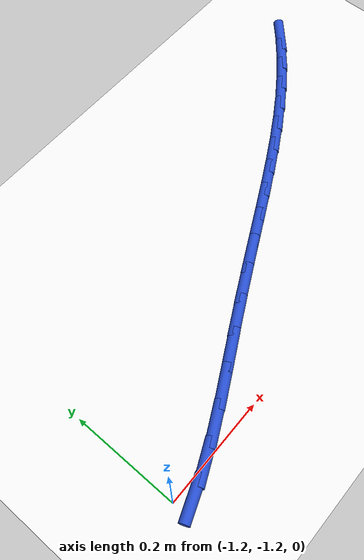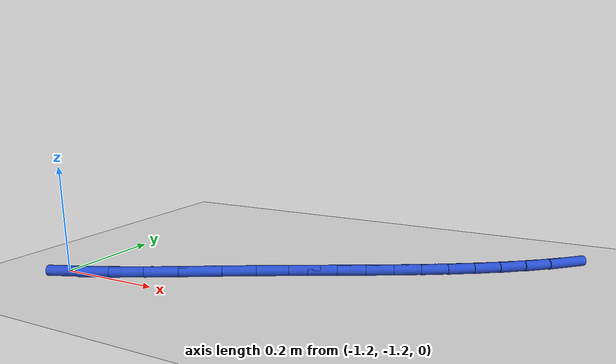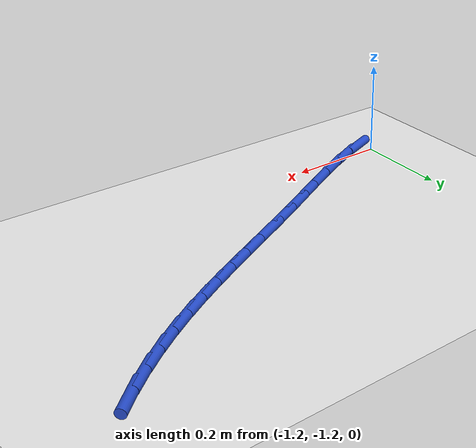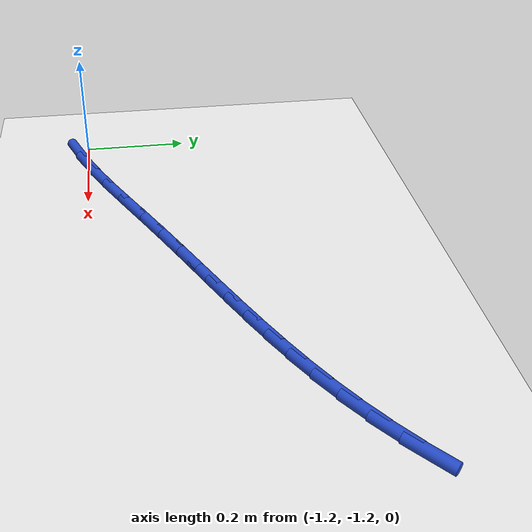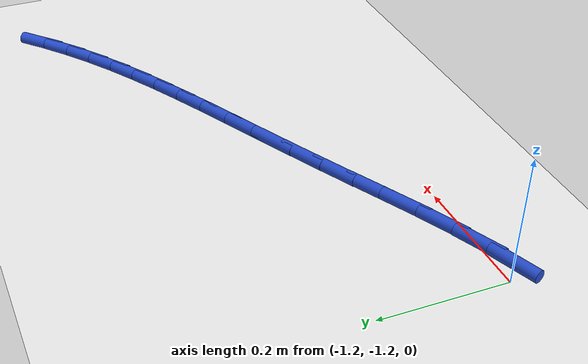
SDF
<sdf version="1.6">
 <world name="default">
  <model name="ground_plane">
   <static>1</static>
   <link name="link">
    <collision name="collision">
     <geometry><plane><normal>0 0 1</normal><size>100 100</size></plane></geometry>
     <surface><friction><ode><mu>100</mu><mu2>50</mu2></ode></friction></surface>
    </collision>
    <visual name="visual">
     <cast_shadows>0</cast_shadows>
     <geometry><plane><normal>0 0 1</normal><size>100 100</size></plane></geometry>
     <material>
      <script><uri>file://media/materials/scripts/gazebo.material</uri><name>Gazebo/WhiteGlow</name></script>
     </material>
    </visual>
   </link>
  </model>
  <model name="line">
   <link name="link_107">
    <pose>-1.1768588066266412 -1.2202918363066644 0.01 0 1.57 0.3687383506993966</pose>
    <collision name="collision">
     <geometry><cylinder><radius>0.01</radius><length>0.08</length></cylinder></geometry>
    </collision>
    <visual name="visual">
     <material>
      <script><name>Gazebo/Blue</name><uri>file://media/materials/scripts/gazebo.material</uri></script>
     </material>
     <geometry><cylinder><radius>0.01</radius><length>0.08</length></cylinder></geometry>
    </visual>
   </link>
   <link name="link_108">
    <pose>-1.1228394237540409 -1.1994180757512907 0.01 0 1.57 0.43280047578155767</pose>
    <collision name="collision">
     <geometry><cylinder><radius>0.01</radius><length>0.08</length></cylinder></geometry>
    </collision>
    <visual name="visual">
     <material>
      <script><name>Gazebo/Blue</name><uri>file://media/materials/scripts/gazebo.material</uri></script>
     </material>
     <geometry><cylinder><radius>0.01</radius><length>0.08</length></cylinder></geometry>
    </visual>
   </link>
   <link name="link_109">
    <pose>-1.067206180015214 -1.173714688195121 0.01 0 1.57 0.47257727667741417</pose>
    <collision name="collision">
     <geometry><cylinder><radius>0.01</radius><length>0.08</length></cylinder></geometry>
    </collision>
    <visual name="visual">
     <material>
      <script><name>Gazebo/Blue</name><uri>file://media/materials/scripts/gazebo.material</uri></script>
     </material>
     <geometry><cylinder><radius>0.01</radius><length>0.08</length></cylinder></geometry>
    </visual>
   </link>
   <link name="link_110">
    <pose>-1.0108186372605097 -1.1448886746342304 0.01 0 1.57 0.4930565986953674</pose>
    <collision name="collision">
     <geometry><cylinder><radius>0.01</radius><length>0.08</length></cylinder></geometry>
    </collision>
    <visual name="visual">
     <material>
      <script><name>Gazebo/Blue</name><uri>file://media/materials/scripts/gazebo.material</uri></script>
     </material>
     <geometry><cylinder><radius>0.01</radius><length>0.08</length></cylinder></geometry>
    </visual>
   </link>
   <link name="link_111">
    <pose>-0.954536357340276 -1.114647036064695 0.01 0 1.57 0.49623605324292946</pose>
    <collision name="collision">
     <geometry><cylinder><radius>0.01</radius><length>0.08</length></cylinder></geometry>
    </collision>
    <visual name="visual">
     <material>
      <script><name>Gazebo/Blue</name><uri>file://media/materials/scripts/gazebo.material</uri></script>
     </material>
     <geometry><cylinder><radius>0.01</radius><length>0.08</length></cylinder></geometry>
    </visual>
   </link>
   <link name="link_112">
    <pose>-0.8992189006969437 -1.0846967703425339 0.01 0 1.57 0.4856911034715962</pose>
    <collision name="collision">
     <geometry><cylinder><radius>0.01</radius><length>0.08</length></cylinder></geometry>
    </collision>
    <visual name="visual">
     <material>
      <script><name>Gazebo/Blue</name><uri>file://media/materials/scripts/gazebo.material</uri></script>
     </material>
     <geometry><cylinder><radius>0.01</radius><length>0.08</length></cylinder></geometry>
    </visual>
   </link>
   <link name="link_113">
    <pose>-0.8455582543475373 -1.0563711388503894 0.01 0 1.57 0.47591807990428736</pose>
    <collision name="collision">
     <geometry><cylinder><radius>0.01</radius><length>0.08</length></cylinder></geometry>
    </collision>
    <visual name="visual">
     <material>
      <script><name>Gazebo/Blue</name><uri>file://media/materials/scripts/gazebo.material</uri></script>
     </material>
     <geometry><cylinder><radius>0.01</radius><length>0.08</length></cylinder></geometry>
    </visual>
   </link>
   <link name="link_114">
    <pose>-0.7936165473674769 -1.029598640340709 0.01 0 1.57 0.4710391878446599</pose>
    <collision name="collision">
     <geometry><cylinder><radius>0.01</radius><length>0.08</length></cylinder></geometry>
    </collision>
    <visual name="visual">
     <material>
      <script><name>Gazebo/Blue</name><uri>file://media/materials/scripts/gazebo.material</uri></script>
     </material>
     <geometry><cylinder><radius>0.01</radius><length>0.08</length></cylinder></geometry>
    </visual>
   </link>
   <link name="link_115">
    <pose>-0.7433079503969073 -1.003977784108054 0.01 0 1.57 0.4716551694981317</pose>
    <collision name="collision">
     <geometry><cylinder><radius>0.01</radius><length>0.08</length></cylinder></geometry>
    </collision>
    <visual name="visual">
     <material>
      <script><name>Gazebo/Blue</name><uri>file://media/materials/scripts/gazebo.material</uri></script>
     </material>
     <geometry><cylinder><radius>0.01</radius><length>0.08</length></cylinder></geometry>
    </visual>
   </link>
   <link name="link_116">
    <pose>-0.6945466340759724 -0.9791070794469856 0.01 0 1.57 0.4782889114715015</pose>
    <collision name="collision">
     <geometry><cylinder><radius>0.01</radius><length>0.08</length></cylinder></geometry>
    </collision>
    <visual name="visual">
     <material>
      <script><name>Gazebo/Blue</name><uri>file://media/materials/scripts/gazebo.material</uri></script>
     </material>
     <geometry><cylinder><radius>0.01</radius><length>0.08</length></cylinder></geometry>
    </visual>
   </link>
   <link name="link_117">
    <pose>-0.6472467690448169 -0.9545850356520651 0.01 0 1.57 0.4913454807216737</pose>
    <collision name="collision">
     <geometry><cylinder><radius>0.01</radius><length>0.08</length></cylinder></geometry>
    </collision>
    <visual name="visual">
     <material>
      <script><name>Gazebo/Blue</name><uri>file://media/materials/scripts/gazebo.material</uri></script>
     </material>
     <geometry><cylinder><radius>0.01</radius><length>0.08</length></cylinder></geometry>
    </visual>
   </link>
   <link name="link_118">
    <pose>-0.6013225259435868 -0.9300101620178547 0.01 0 1.57 0.5110663511701681</pose>
    <collision name="collision">
     <geometry><cylinder><radius>0.01</radius><length>0.08</length></cylinder></geometry>
    </collision>
    <visual name="visual">
     <material>
      <script><name>Gazebo/Blue</name><uri>file://media/materials/scripts/gazebo.material</uri></script>
     </material>
     <geometry><cylinder><radius>0.01</radius><length>0.08</length></cylinder></geometry>
    </visual>
   </link>
   <link name="link_119">
    <pose>-0.5566880754124263 -0.9049809678389154 0.01 0 1.57 0.5374805232733235</pose>
    <collision name="collision">
     <geometry><cylinder><radius>0.01</radius><length>0.08</length></cylinder></geometry>
    </collision>
    <visual name="visual">
     <material>
      <script><name>Gazebo/Blue</name><uri>file://media/materials/scripts/gazebo.material</uri></script>
     </material>
     <geometry><cylinder><radius>0.01</radius><length>0.08</length></cylinder></geometry>
    </visual>
   </link>
   <link name="link_120">
    <pose>-0.5132575880914798 -0.8790959624098089 0.01 0 1.57 0.5703587265297233</pose>
    <collision name="collision">
     <geometry><cylinder><radius>0.01</radius><length>0.08</length></cylinder></geometry>
    </collision>
    <visual name="visual">
     <material>
      <script><name>Gazebo/Blue</name><uri>file://media/materials/scripts/gazebo.material</uri></script>
     </material>
     <geometry><cylinder><radius>0.01</radius><length>0.08</length></cylinder></geometry>
    </visual>
   </link>
   <link name="link_121">
    <pose>-0.47094523462089255 -0.8519536550250966 0.01 0 1.57 0.60918083256515</pose>
    <collision name="collision">
     <geometry><cylinder><radius>0.01</radius><length>0.08</length></cylinder></geometry>
    </collision>
    <visual name="visual">
     <material>
      <script><name>Gazebo/Blue</name><uri>file://media/materials/scripts/gazebo.material</uri></script>
     </material>
     <geometry><cylinder><radius>0.01</radius><length>0.08</length></cylinder></geometry>
    </visual>
   </link>
   <link name="link_122">
    <pose>-0.42966518564080847 -0.8231525549793393 0.01 0 1.57 0.6531291472372741</pose>
    <collision name="collision">
     <geometry><cylinder><radius>0.01</radius><length>0.08</length></cylinder></geometry>
    </collision>
    <visual name="visual">
     <material>
      <script><name>Gazebo/Blue</name><uri>file://media/materials/scripts/gazebo.material</uri></script>
     </material>
     <geometry><cylinder><radius>0.01</radius><length>0.08</length></cylinder></geometry>
    </visual>
   </link>
   <link name="link_123">
    <pose>-0.3893316117913738 -0.7922911715670998 0.01 0 1.57 0.7008997699939423</pose>
    <collision name="collision">
     <geometry><cylinder><radius>0.01</radius><length>0.08</length></cylinder></geometry>
    </collision>
    <visual name="visual">
     <material>
      <script><name>Gazebo/Blue</name><uri>file://media/materials/scripts/gazebo.material</uri></script>
     </material>
     <geometry><cylinder><radius>0.01</radius><length>0.08</length></cylinder></geometry>
    </visual>
   </link>
   <link name="link_124">
    <pose>-0.34987595111391895 -0.7589973937831261 0.01 0 1.57 0.74925995971805</pose>
    <collision name="collision">
     <geometry><cylinder><radius>0.01</radius><length>0.08</length></cylinder></geometry>
    </collision>
    <visual name="visual">
     <material>
      <script><name>Gazebo/Blue</name><uri>file://media/materials/scripts/gazebo.material</uri></script>
     </material>
     <geometry><cylinder><radius>0.01</radius><length>0.08</length></cylinder></geometry>
    </visual>
   </link>
  </model>
 </world>
</sdf>
